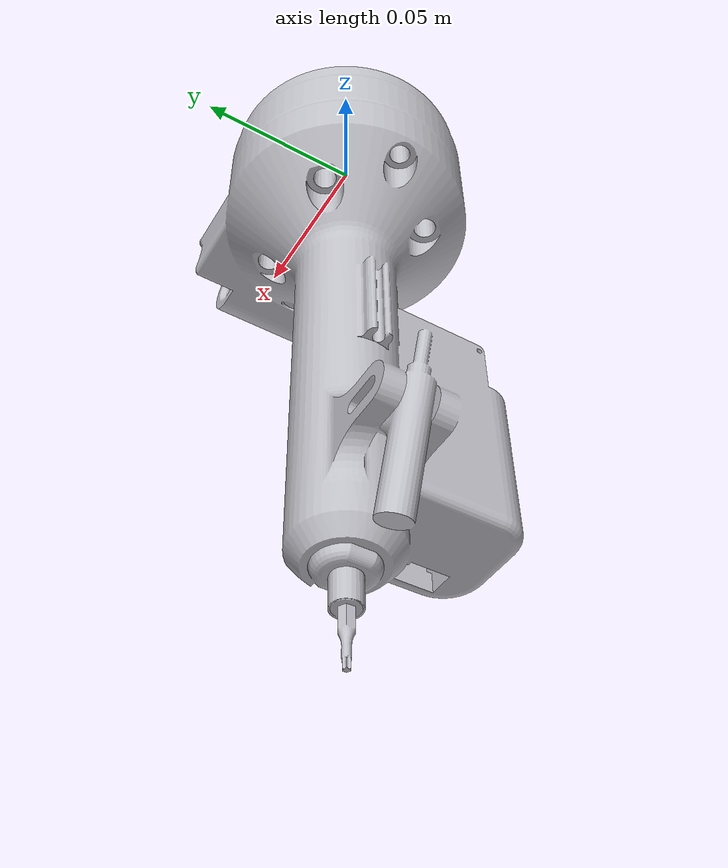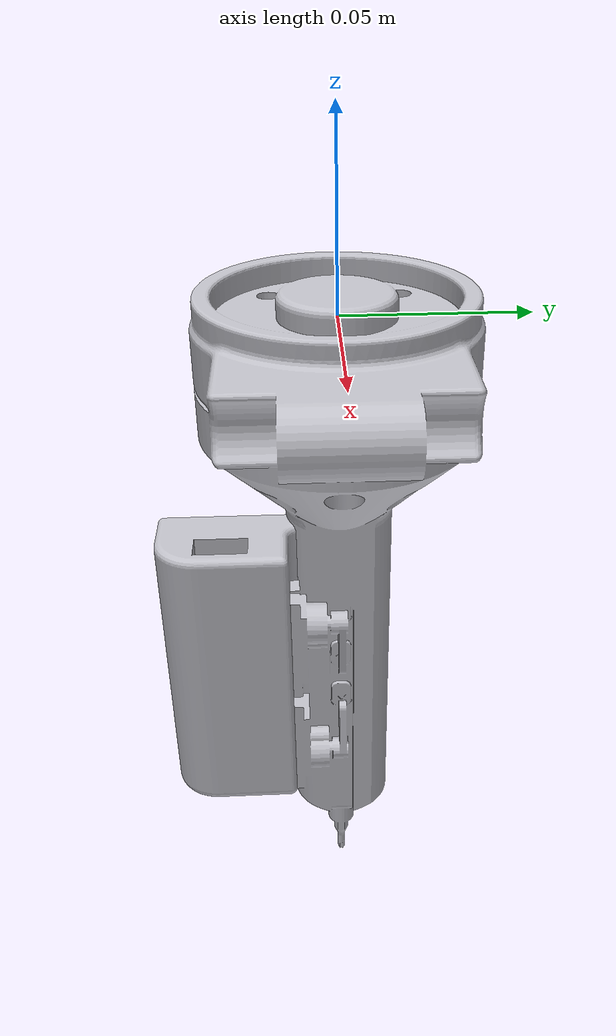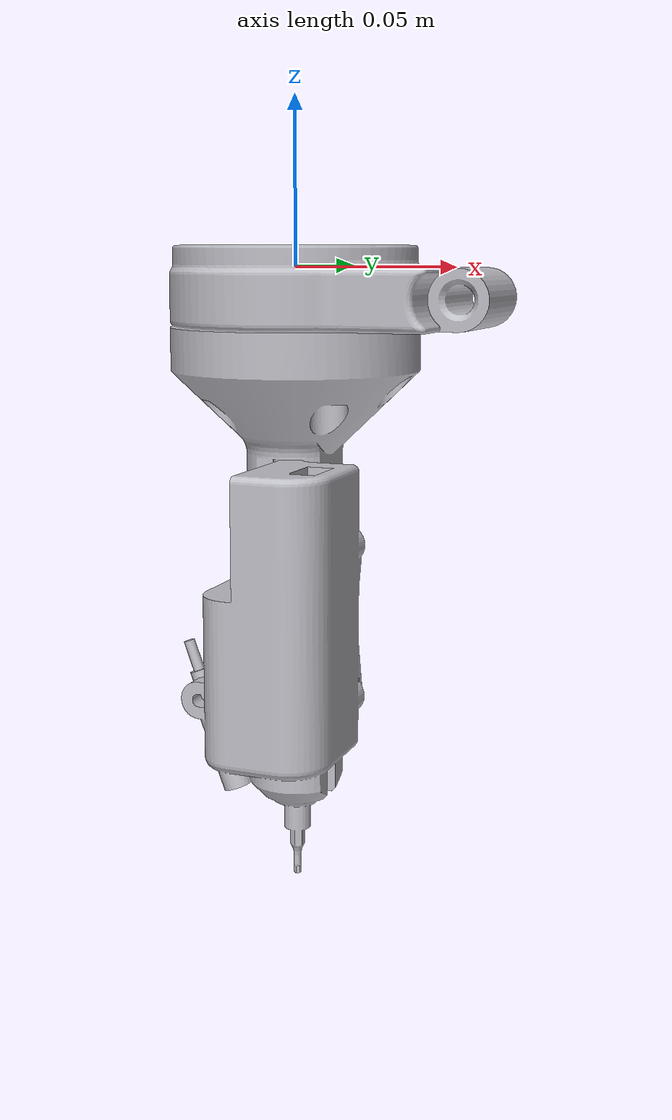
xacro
<?xml version="1.0"?>
<robot name="screwdriver_robot"
       xmlns:xacro="http://www.ros.org/wiki/xacro">

  <!-- Arguments              -->

  <xacro:arg name="prefix"        default="screwdriver_"/>
  <xacro:arg name="mesh_pkg"      default="screwdriver_description"/>
  <xacro:arg name="mesh_subdir"   default="meshes/visual"/>
  <xacro:arg name="color_primary" default="0.75 0.75 0.78 1.0"/>

  <!-- Include prefixed macro -->

  <xacro:include
    filename="$(find screwdriver_description)/urdf/screwdriver_prefixed.urdf.xacro"/>

  <!-- Instantiate tool       -->

  <xacro:screwdriver_robot
    prefix="$(arg prefix)"
    mesh_pkg="$(arg mesh_pkg)"
    mesh_subdir="$(arg mesh_subdir)"
    color_primary="$(arg color_primary)"/>

</robot>

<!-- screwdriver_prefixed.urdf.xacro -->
<robot xmlns:xacro="http://www.ros.org/wiki/xacro">

  <!-- Macro: screwdriver_robot                         -->
  <!-- Prefixed, minimal screwdriver body + TCP         -->
  <!-- params:
       prefix
       mesh_pkg
       mesh_subdir
       color_primary
  -->
  <xacro:macro name="screwdriver_robot"
               params="
                 prefix
                 mesh_pkg:='screwdriver_description'
                 mesh_subdir:='meshes/visual'
                 color_primary:='0.75 0.75 0.78 1.0'
               ">

    <!-- Mesh path -->
    <xacro:property name="mesh_prefix"
                    value="package://${mesh_pkg}/${mesh_subdir}"/>

    <!-- Prefixed material -->
    <material name="${prefix}mat_primary">
      <color rgba="${color_primary}"/>
    </material>

    <!-- Base link              -->
    <link name="${prefix}base_link">
      <inertial>
        <origin
          xyz="0.0010808014887289184 0.007507986594187236 -0.05921266535363922"
          rpy="0 0 0"/>
        <mass value="2.9252936726647953"/>
        <inertia
          ixx="0.008232"
          iyy="0.00804"
          izz="0.00213"
          ixy="0.000208"
          iyz="0.00098"
          ixz="-0.000486"/>
      </inertial>

      <visual>
        <origin xyz="0 0 0" rpy="0 0 0"/>
        <geometry>
          <mesh
            filename="${mesh_prefix}/base_link.stl"
            scale="0.001 0.001 0.001"/>
        </geometry>
        <material name="${prefix}mat_primary"/>
      </visual>

      <collision>
        <origin xyz="0 0 0" rpy="0 0 0"/>
        <geometry>
          <mesh
            filename="${mesh_prefix}/base_link.stl"
            scale="0.001 0.001 0.001"/>
        </geometry>
      </collision>
    </link>

    <!-- TCP link               -->
    <link name="${prefix}tcp"/>

    <!-- Base → TCP -->
    <joint name="${prefix}base_to_tcp" type="fixed">
      <!-- TCP is 0.192 m along +Z of screwdriver -->
      <origin xyz="0 0 -0.192" rpy="0 0 0"/>
      <parent link="${prefix}base_link"/>
      <child  link="${prefix}tcp"/>
    </joint>

  </xacro:macro>

</robot>
